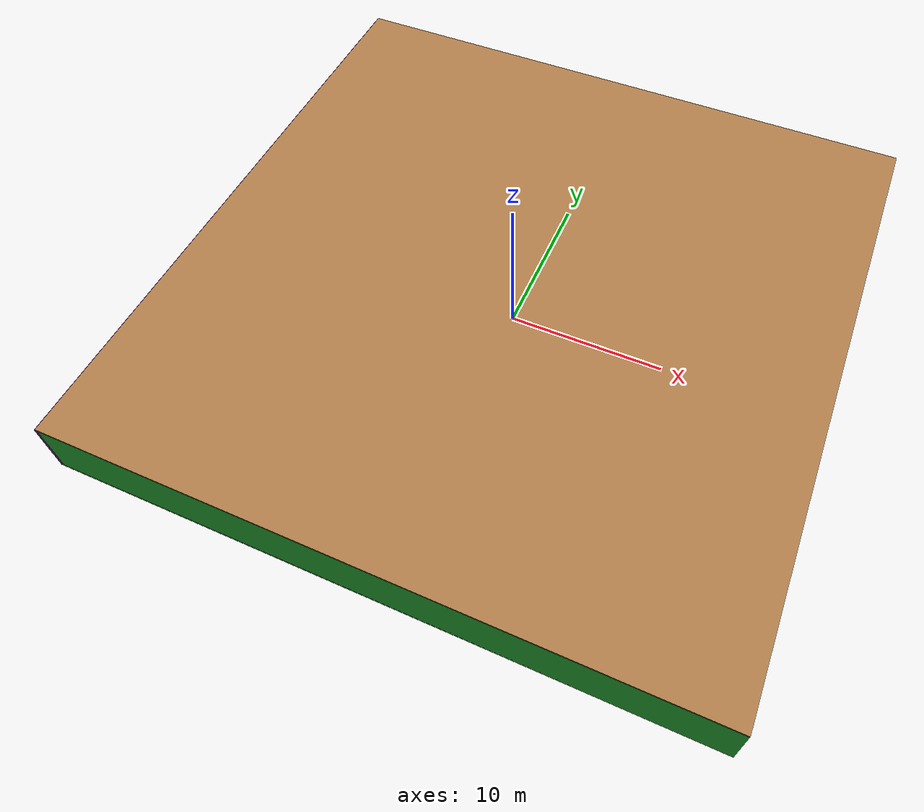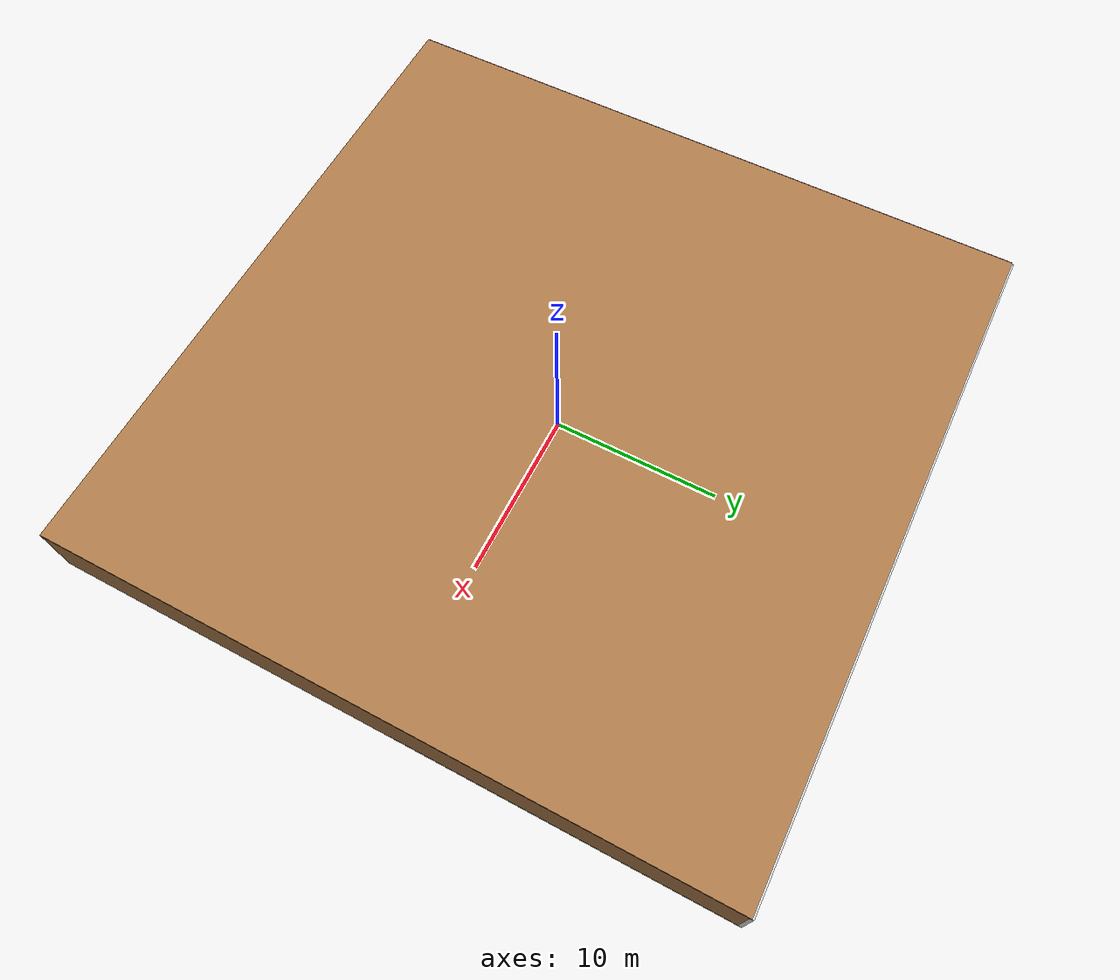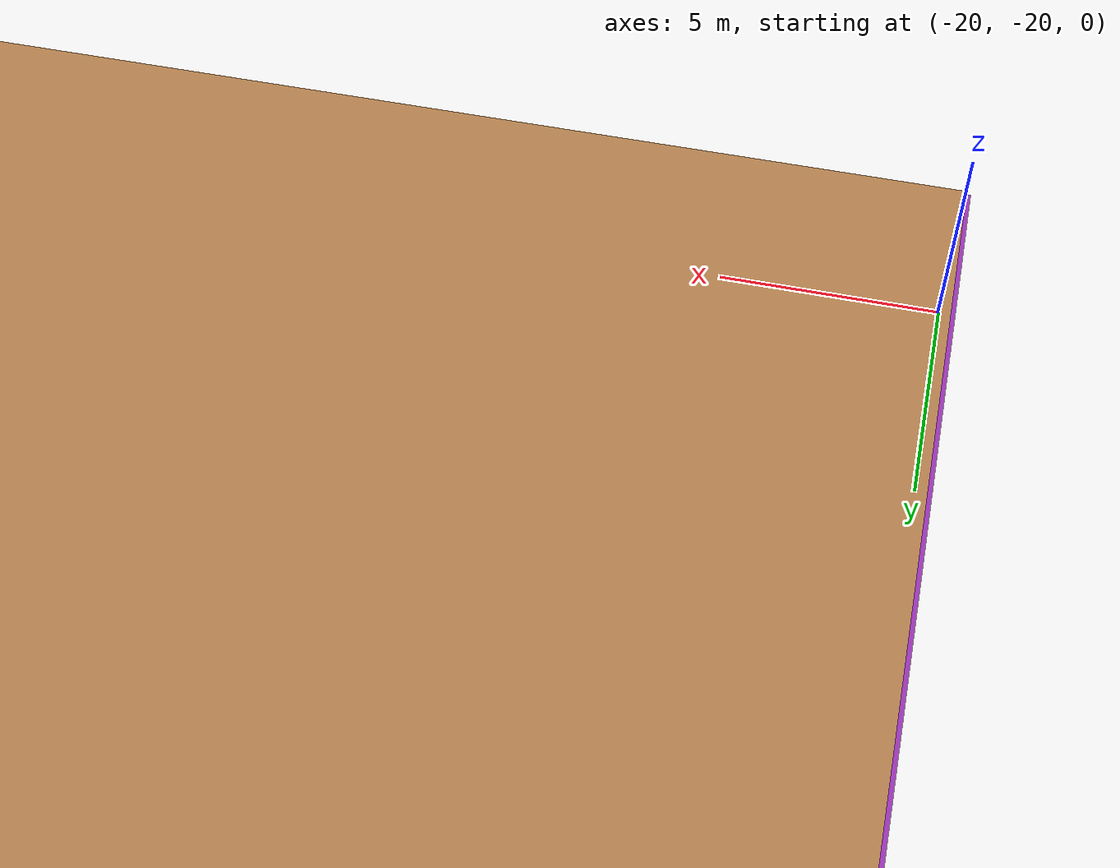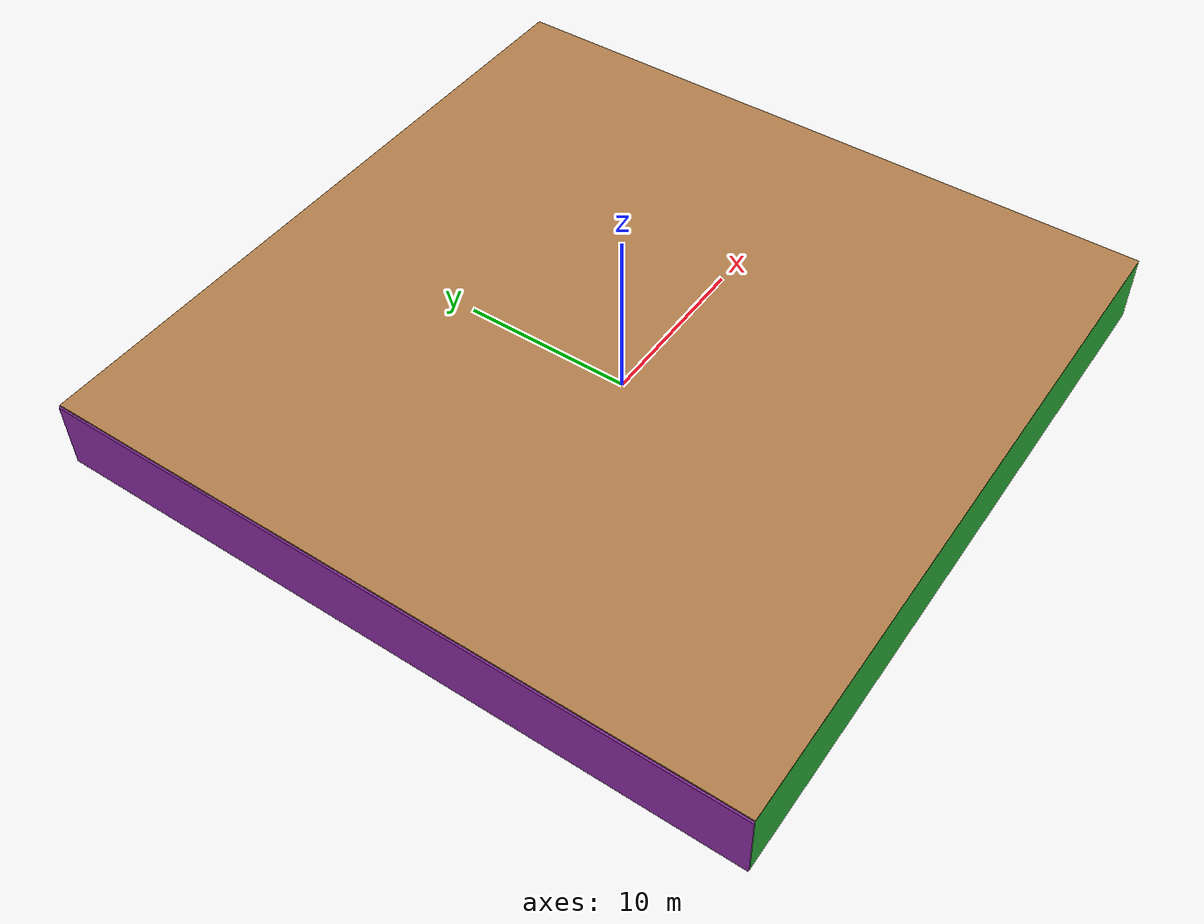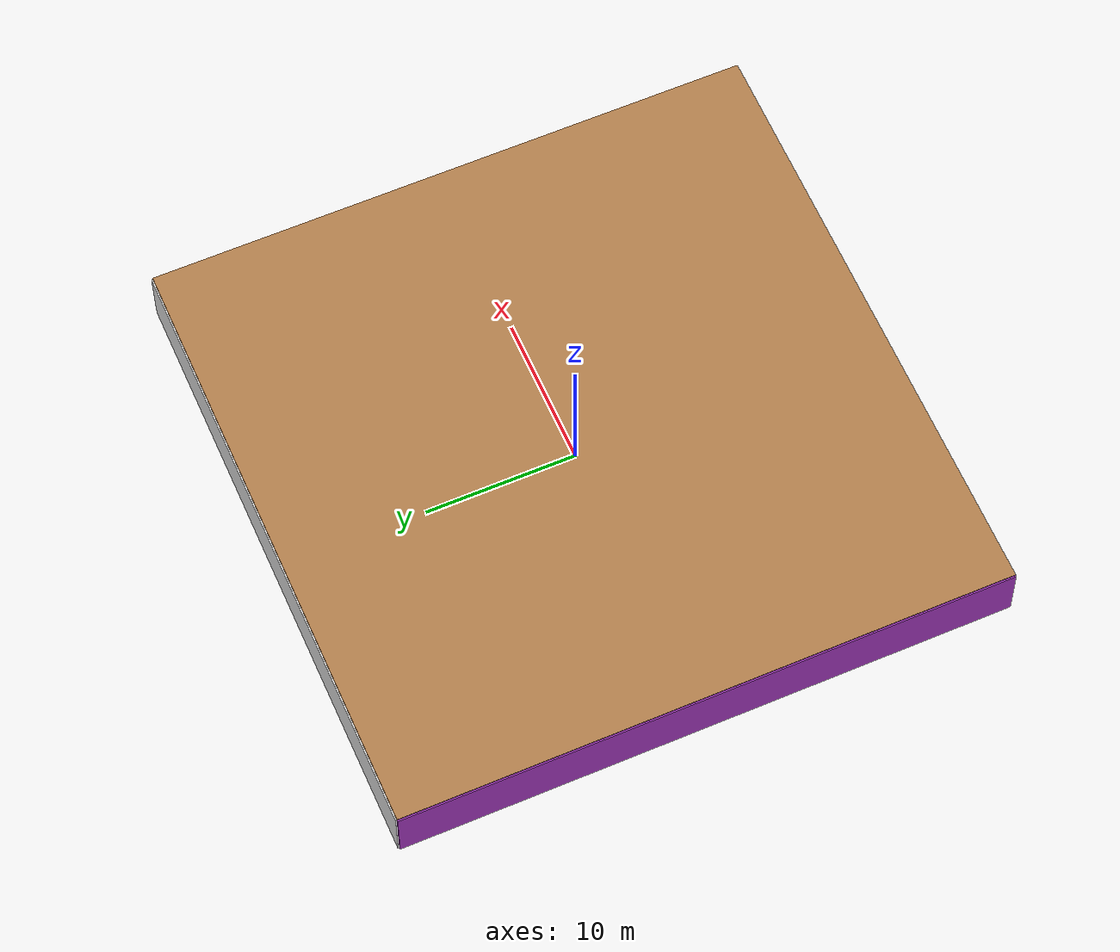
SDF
<sdf version="1.4">
 <world name="default">
  <physics type="ode">
   <max_step_size>0.001</max_step_size>
   <real_time_factor>1</real_time_factor>
   <real_time_update_rate>1000</real_time_update_rate>
   <gravity>0 0 -9.8</gravity>
  </physics>
  <scene><ambient>0.4 0.4 0.4 1</ambient><background>0.7 0.7 0.7 1</background><shadows>1</shadows></scene>
  <model name="Surrounding">
   <static>1</static>
   <link name="Ceiling">
    <collision name="Ceiling_Collision"><geometry><box><size>40 40 0.1</size></box></geometry></collision>
    <visual name="Ceiling_Visual">
     <geometry><box><size>40 40 0.1</size></box></geometry>
     <material>
      <script><uri>file://media/materials/scripts/gazebo.material</uri><name>Gazebo/WoodPallet</name></script>
     </material>
    </visual>
    <pose>0 0 4.05 0 0 0</pose>
   </link>
   <link name="Wall_South">
    <collision name="Wall_South_Collision">
     <geometry><box><size>40 0 4</size></box></geometry>
     <pose>0 0 2 0 -0 0</pose>
    </collision>
    <visual name="Wall_South_Visual">
     <pose>0 0 2 0 -0 0</pose>
     <geometry><box><size>40 0 4</size></box></geometry>
     <material>
      <script><uri>file://media/materials/scripts/gazebo.material</uri><name>Gazebo/GreenGlow</name></script>
     </material>
    </visual>
    <velocity_decay><linear>0</linear><angular>0</angular></velocity_decay>
    <pose>0 -20 0 0 -0 0</pose>
   </link>
   <link name="Wall_East">
    <collision name="Wall_21_Collision">
     <geometry><box><size>40 0 4</size></box></geometry>
     <pose>0 0 2 0 -0 0</pose>
    </collision>
    <visual name="Wall_21_Visual">
     <pose>0 0 2 0 -0 0</pose>
     <geometry><box><size>40 0 4</size></box></geometry>
     <material>
      <script><uri>file://media/materials/scripts/gazebo.material</uri><name>Gazebo/WoodFloor</name></script>
     </material>
    </visual>
    <velocity_decay><linear>0</linear><angular>0</angular></velocity_decay>
    <pose>20 0 0 0 -0 1.5708</pose>
   </link>
   <link name="Wall_North">
    <collision name="Wall_22_Collision">
     <geometry><box><size>40 0.2 4</size></box></geometry>
     <pose>0 0 2 0 -0 0</pose>
    </collision>
    <visual name="Wall_22_Visual">
     <pose>0 0 2 0 -0 0</pose>
     <geometry><box><size>40 0.2 4</size></box></geometry>
     <material>
      <script><uri>file://media/materials/scripts/gazebo.material</uri><name>Gazebo/White</name></script>
     </material>
    </visual>
    <velocity_decay><linear>0</linear><angular>0</angular></velocity_decay>
    <pose>0 20 0 0 -0 0</pose>
   </link>
   <link name="Wall_West">
    <collision name="Wall_23_Collision">
     <geometry><box><size>40 0.2 4</size></box></geometry>
     <pose>0 0 2 0 -0 0</pose>
    </collision>
    <visual name="Wall_23_Visual">
     <pose>0 0 2 0 -0 0</pose>
     <geometry><box><size>40 0.2 4</size></box></geometry>
     <material>
      <script><uri>file://media/materials/scripts/gazebo.material</uri><name>Gazebo/Purple</name></script>
     </material>
    </visual>
    <velocity_decay><linear>0</linear><angular>0</angular></velocity_decay>
    <pose>-20 0 0 0 0 -1.5708</pose>
   </link>
   <link name="Ground_link">
    <collision name="collision">
     <pose>0 0 .05 0 -0 0</pose>
     <geometry><box><size>40 40 0.1</size></box></geometry>
    </collision>
    <visual name="visual">
     <pose>0 0 .05 0 -0 0</pose>
     <geometry><box><size>40 40 0.1</size></box></geometry>
     <material>
      <script><uri>file://media/materials/scripts/gazebo.material</uri><name>Gazebo/GreenTransparent</name></script>
     </material>
    </visual>
   </link>
   <static>1</static>
  </model>
  <spherical_coordinates>
   <surface_model>EARTH_WGS84</surface_model>
   <latitude_deg>0</latitude_deg>
   <longitude_deg>0</longitude_deg>
   <elevation>0</elevation>
   <heading_deg>0</heading_deg>
  </spherical_coordinates>
  <light name="lightball_0" type="diffuse">
   <diffuse>0.8 0.8 0.8 1</diffuse>
   <specular>0.2 0.2 0.2 1</specular>
   <attenuation>
    <range>100</range>
    <constant>0.7</constant>
    <linear>0.01</linear>
    <quadratic>0.001</quadratic>
   </attenuation>
   <direction>-0.5 0.1 -0.9</direction>
   <pose>-2.00146260549 4.66076200547 1.0526886272 0 0 0</pose>
  </light>
  <light name="lightball_1" type="diffuse">
   <diffuse>0.8 0.8 0.8 1</diffuse>
   <specular>0.2 0.2 0.2 1</specular>
   <attenuation>
    <range>100</range>
    <constant>0.7</constant>
    <linear>0.01</linear>
    <quadratic>0.001</quadratic>
   </attenuation>
   <direction>-0.5 0.1 -0.9</direction>
   <pose>-8.69735270726 -6.93028395331 2.44069284213 0 0 0</pose>
  </light>
  <light name="lightball_2" type="diffuse">
   <diffuse>0.8 0.8 0.8 1</diffuse>
   <specular>0.2 0.2 0.2 1</specular>
   <attenuation>
    <range>100</range>
    <constant>0.7</constant>
    <linear>0.01</linear>
    <quadratic>0.001</quadratic>
   </attenuation>
   <direction>-0.5 0.1 -0.9</direction>
   <pose>-14.1749708973 -16.1614507067 2.2178846603 0 0 0</pose>
  </light>
  <light name="lightball_3" type="diffuse">
   <diffuse>0.8 0.8 0.8 1</diffuse>
   <specular>0.2 0.2 0.2 1</specular>
   <attenuation>
    <range>100</range>
    <constant>0.7</constant>
    <linear>0.01</linear>
    <quadratic>0.001</quadratic>
   </attenuation>
   <direction>-0.5 0.1 -0.9</direction>
   <pose>5.13988389934 13.2870489447 3.51111796485 0 0 0</pose>
  </light>
  <light name="lightball_4" type="diffuse">
   <diffuse>0.8 0.8 0.8 1</diffuse>
   <specular>0.2 0.2 0.2 1</specular>
   <attenuation>
    <range>100</range>
    <constant>0.7</constant>
    <linear>0.01</linear>
    <quadratic>0.001</quadratic>
   </attenuation>
   <direction>-0.5 0.1 -0.9</direction>
   <pose>14.7452459802 5.55650788871 0.728517791887 0 0 0</pose>
  </light>
  <light name="lightball_5" type="diffuse">
   <diffuse>0.8 0.8 0.8 1</diffuse>
   <specular>0.2 0.2 0.2 1</specular>
   <attenuation>
    <range>100</range>
    <constant>0.7</constant>
    <linear>0.01</linear>
    <quadratic>0.001</quadratic>
   </attenuation>
   <direction>-0.5 0.1 -0.9</direction>
   <pose>-8.28311456274 11.9491088297 2.95563273184 0 0 0</pose>
  </light>
  <light name="lightball_6" type="diffuse">
   <diffuse>0.8 0.8 0.8 1</diffuse>
   <specular>0.2 0.2 0.2 1</specular>
   <attenuation>
    <range>100</range>
    <constant>0.7</constant>
    <linear>0.01</linear>
    <quadratic>0.001</quadratic>
   </attenuation>
   <direction>-0.5 0.1 -0.9</direction>
   <pose>10.6141900934 -12.6051019797 1.92290275085 0 0 0</pose>
  </light>
  <light name="lightball_7" type="diffuse">
   <diffuse>0.8 0.8 0.8 1</diffuse>
   <specular>0.2 0.2 0.2 1</specular>
   <attenuation>
    <range>100</range>
    <constant>0.7</constant>
    <linear>0.01</linear>
    <quadratic>0.001</quadratic>
   </attenuation>
   <direction>-0.5 0.1 -0.9</direction>
   <pose>4.1567062161 5.4185333537 2.79538172582 0 0 0</pose>
  </light>
  <light name="lightball_8" type="diffuse">
   <diffuse>0.8 0.8 0.8 1</diffuse>
   <specular>0.2 0.2 0.2 1</specular>
   <attenuation>
    <range>100</range>
    <constant>0.7</constant>
    <linear>0.01</linear>
    <quadratic>0.001</quadratic>
   </attenuation>
   <direction>-0.5 0.1 -0.9</direction>
   <pose>16.5421071379 -2.93160667469 2.00505390678 0 0 0</pose>
  </light>
  <include><uri>model://cabinet</uri><pose>-17.8360769391 -15.4475448264 0 0 0 0.590462774932</pose></include>
  <include><uri>model://table</uri><pose>-16.4453047446 3.16904110968 0 0 0 1.62468512752</pose></include>
  <include><uri>model://cabinet</uri><pose>-17.9685525064 18.1751492512 0 0 0 0.706060284533</pose></include>
  <include><uri>model://table</uri><pose>-13.8727611629 -7.93256377013 0 0 0 1.22365619514</pose></include>
  <include><uri>model://table</uri><pose>-15.3046643678 -1.73323303489 0 0 0 1.80029601887</pose></include>
  <include>
   <uri>model://textured_shapes</uri>
   <pose>-13.5023738116 0.494923767948 0 0 0 1.83459362224</pose>
  </include>
  <include><uri>model://cabinet</uri><pose>-13.328057679 19.3843203342 0 0 0 1.50158401323</pose></include>
  <include>
   <uri>model://construction_cone</uri>
   <pose>-11.3350948474 -17.9600300483 0 0 0 0.4918776353</pose>
  </include>
  <include>
   <uri>model://robocup_3Dsim_goal</uri>
   <pose>-10.6050758172 -14.3053528988 0 0 0 2.46054857611</pose>
  </include>
  <include>
   <uri>model://robocup_3Dsim_goal</uri>
   <pose>-9.3993856778 -16.5159177833 0 0 0 1.76930617447</pose>
  </include>
  <include>
   <uri>model://textured_shapes</uri>
   <pose>-8.55876777942 -11.8444229329 0 0 0 0.290866694426</pose>
  </include>
  <include><uri>model://cabinet</uri><pose>-9.58284519019 6.48671383414 0 0 0 1.3699742815</pose></include>
  <include>
   <uri>model://robocup_3Dsim_goal</uri>
   <pose>-4.84408128591 0.150489163961 0 0 0 2.38832682296</pose>
  </include>
  <include>
   <uri>model://robocup_3Dsim_goal</uri>
   <pose>-0.408244717356 14.4698386934 0 0 0 2.32035724259</pose>
  </include>
  <include>
   <uri>model://textured_shapes</uri>
   <pose>2.61903757515 -15.2515019145 0 0 0 2.994078399</pose>
  </include>
  <include>
   <uri>model://robocup_3Dsim_goal</uri>
   <pose>2.69779389955 3.00656229424 0 0 0 0.0346034449805</pose>
  </include>
  <include>
   <uri>model://robocup_3Dsim_goal</uri>
   <pose>3.01028132463 18.5842453941 0 0 0 3.09472798191</pose>
  </include>
  <include>
   <uri>model://textured_shapes</uri>
   <pose>5.60523489039 3.98732866393 0 0 0 0.11902270269</pose>
  </include>
  <include>
   <uri>model://construction_cone</uri>
   <pose>6.69835151048 5.35759457871 0 0 0 0.998204376935</pose>
  </include>
  <include>
   <uri>model://construction_cone</uri>
   <pose>8.64337170428 -18.4226502477 0 0 0 2.23629077492</pose>
  </include>
  <include>
   <uri>model://textured_shapes</uri>
   <pose>9.70762971642 -4.60406352739 0 0 0 2.4475218601</pose>
  </include>
  <include>
   <uri>model://textured_shapes</uri>
   <pose>9.11785217112 6.90238981294 0 0 0 0.649131415378</pose>
  </include>
  <include>
   <uri>model://robocup_3Dsim_goal</uri>
   <pose>11.4866341343 4.53511632128 0 0 0 1.17048668841</pose>
  </include>
  <include><uri>model://table</uri><pose>12.4273403815 14.9243139414 0 0 0 2.62088316403</pose></include>
  <include>
   <uri>model://construction_cone</uri>
   <pose>16.0551616228 3.02954341256 0 0 0 0.130186371316</pose>
  </include>
  <include>
   <uri>model://robocup_3Dsim_goal</uri>
   <pose>16.5408496454 10.1719685624 0 0 0 0.919804911362</pose>
  </include>
  <include><uri>model://cabinet</uri><pose>16.026859171 19.5083304343 0 0 0 0.217448171772</pose></include>
 </world>
</sdf>

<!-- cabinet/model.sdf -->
<sdf version="1.5">
  <model name="cabinet">
    <static>true</static>
    <link name="cabinet_bottom_plate">
      <inertial>
        <pose>0 0 -1 0 0 0</pose>
        <inertia>
          <ixx>2.050000</ixx>
          <ixy>0</ixy>
          <ixz>0</ixz>
          <iyy>2.050000</iyy>
          <iyz>0</iyz>
          <izz>2.050000</izz>
        </inertia>
        <mass>25.000000</mass>
      </inertial>
      <collision name="cabinet_bottom_plate_geom">
        <pose>0 0 0.010000 0 0 0</pose>
        <geometry>
          <box>
            <size>0.450000 0.450000 0.020000</size>
          </box>
        </geometry>
      </collision>
      <visual name="cabinet_bottom_plate_geom_visual">
        <pose>0 0 0.010000 0 0 0</pose>
        <geometry>
          <box>
            <size>0.450000 0.450000 0.020000</size>
          </box>
        </geometry>
        <material>
          <script>
            <uri>model://media/materials/scripts/gazebo.material</uri>
            <name>Gazebo/Wood</name>
          </script>
        </material>
      </visual>
      <collision name="cabinet_bottom_plate_geom_cabinet_back_plate">
        <pose>0.235000 0 0.510000 0 0 0</pose>
        <geometry>
          <box>
            <size>0.020000 0.450000 1.020000</size>
          </box>
        </geometry>
      </collision>
      <visual name="cabinet_bottom_plate_geom_cabinet_back_plate_visual">
        <pose>0.235000 0 0.510000 0 0 0</pose>
        <geometry>
          <box>
            <size>0.020000 0.450000 1.020000</size>
          </box>
        </geometry>
        <material>
          <script>
            <uri>model://media/materials/scripts/gazebo.material</uri>
            <name>Gazebo/Wood</name>
          </script>
        </material>
      </visual>
      <collision name="cabinet_bottom_plate_geom_cabinet_left_plate">
        <pose>0 0.235000 0.510000 0 0 0</pose>
        <geometry>
          <box>
            <size>0.450000 0.020000 1.020000</size>
          </box>
        </geometry>
      </collision>
      <visual name="cabinet_bottom_plate_geom_cabinet_left_plate_visual">
        <pose>0 0.235000 0.510000 0 0 0</pose>
        <geometry>
          <box>
            <size>0.450000 0.020000 1.020000</size>
          </box>
        </geometry>
        <material>
          <script>
            <uri>model://media/materials/scripts/gazebo.material</uri>
            <name>Gazebo/Wood</name>
          </script>
        </material>
      </visual>
      <collision name="cabinet_bottom_plate_geom_cabinet_middle_plate">
        <pose>0 0 0.510000 0 0 0</pose>
        <geometry>
          <box>
            <size>0.450000 0.450000 0.020000</size>
          </box>
        </geometry>
      </collision>
      <visual name="cabinet_bottom_plate_geom_cabinet_middle_plate_visual">
        <pose>0 0 0.510000 0 0 0</pose>
        <geometry>
          <box>
            <size>0.450000 0.450000 0.020000</size>
          </box>
        </geometry>
        <material>
          <script>
            <uri>model://media/materials/scripts/gazebo.material</uri>
            <name>Gazebo/Wood</name>
          </script>
        </material>
      </visual>
      <collision name="cabinet_bottom_plate_geom_cabinet_right_plate">
        <pose>0 -0.235000 0.510000 0 0 0</pose>
        <geometry>
          <box>
            <size>0.450000 0.020000 1.020000</size>
          </box>
        </geometry>
      </collision>
      <visual name="cabinet_bottom_plate_geom_cabinet_right_plate_visual">
        <pose>0 -0.235000 0.510000 0 0 0</pose>
        <geometry>
          <box>
            <size>0.450000 0.020000 1.020000</size>
          </box>
        </geometry>
        <material>
          <script>
            <uri>model://media/materials/scripts/gazebo.material</uri>
            <name>Gazebo/Wood</name>
          </script>
        </material>
      </visual>
      <collision name="cabinet_bottom_plate_geom_cabinet_top_plate">
        <pose>0 0 1.010000 0 0 0</pose>
        <geometry>
          <box>
            <size>0.450000 0.450000 0.020000</size>
          </box>
        </geometry>
      </collision>
      <visual name="cabinet_bottom_plate_geom_cabinet_top_plate_visual">
        <pose>0 0 1.010000 0 0 0</pose>
        <geometry>
          <box>
            <size>0.450000 0.450000 0.020000</size>
          </box>
        </geometry>
        <material>
          <script>
            <uri>model://media/materials/scripts/gazebo.material</uri>
            <name>Gazebo/Wood</name>
          </script>
        </material>
      </visual>
    </link>
  </model>
</sdf>

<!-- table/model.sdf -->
<sdf version="1.5">
  <model name="table">
    <static>true</static>
    <link name="link">
      <collision name="surface">
        <pose>0 0 1.0 0 0 0</pose>
        <geometry>
          <box>
            <size>1.5 0.8 0.03</size>
          </box>
        </geometry>
        <surface>
          <friction>
            <ode>
              <mu>0.6</mu>
              <mu2>0.6</mu2>
            </ode>
          </friction>
        </surface>
      </collision>
      <visual name="visual1">
        <pose>0 0 1.0 0 0 0</pose>
        <geometry>
          <box>
            <size>1.5 0.8 0.03</size>
          </box>
        </geometry>
        <material>
          <script>
            <uri>model://media/materials/scripts/gazebo.material</uri>
            <name>Gazebo/Wood</name>
          </script>
        </material>
      </visual>
      <collision name="front_left_leg">
        <pose>0.68 0.38 0.5 0 0 0</pose>
        <geometry>
          <cylinder>
            <radius>0.02</radius>
            <length>1.0</length>
          </cylinder>
        </geometry>
      </collision>
      <visual name="front_left_leg">
        <pose>0.68 0.38 0.5 0 0 0</pose>
        <geometry>
          <cylinder>
            <radius>0.02</radius>
            <length>1.0</length>
          </cylinder>
        </geometry>
        <material>
          <script>
            <uri>model://media/materials/scripts/gazebo.material</uri>
            <name>Gazebo/Grey</name>
          </script>
        </material>
      </visual>
      <collision name="front_right_leg">
        <pose>0.68 -0.38 0.5 0 0 0</pose>
        <geometry>
          <cylinder>
            <radius>0.02</radius>
            <length>1.0</length>
          </cylinder>
        </geometry>
      </collision>
      <visual name="front_right_leg">
        <pose>0.68 -0.38 0.5 0 0 0</pose>
        <geometry>
          <cylinder>
            <radius>0.02</radius>
            <length>1.0</length>
          </cylinder>
        </geometry>
        <material>
          <script>
            <uri>model://media/materials/scripts/gazebo.material</uri>
            <name>Gazebo/Grey</name>
          </script>
        </material>
      </visual>
      <collision name="back_right_leg">
        <pose>-0.68 -0.38 0.5 0 0 0</pose>
        <geometry>
          <cylinder>
            <radius>0.02</radius>
            <length>1.0</length>
          </cylinder>
        </geometry>
      </collision>
      <visual name="back_right_leg">
        <pose>-0.68 -0.38 0.5 0 0 0</pose>
        <geometry>
          <cylinder>
            <radius>0.02</radius>
            <length>1.0</length>
          </cylinder>
        </geometry>
        <material>
          <script>
            <uri>model://media/materials/scripts/gazebo.material</uri>
            <name>Gazebo/Grey</name>
          </script>
        </material>
      </visual>
      <collision name="back_left_leg">
        <pose>-0.68 0.38 0.5 0 0 0</pose>
        <geometry>
          <cylinder>
            <radius>0.02</radius>
            <length>1.0</length>
          </cylinder>
        </geometry>
      </collision>
      <visual name="back_left_leg">
        <pose>-0.68 0.38 0.5 0 0 0</pose>
        <geometry>
          <cylinder>
            <radius>0.02</radius>
            <length>1.0</length>
          </cylinder>
        </geometry>
        <material>
          <script>
            <uri>model://media/materials/scripts/gazebo.material</uri>
            <name>Gazebo/Grey</name>
          </script>
        </material>
      </visual>
    </link>
  </model>
</sdf>

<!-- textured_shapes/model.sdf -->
<sdf version="1.6">
  <model name="textured_shapes">
    <pose>0 0 0.5 0 0 0</pose>
    <link name="box">
      <pose>0 -1.5 0 0 0 0</pose>
      <collision name="collision">
        <geometry>
          <box>
            <size>1 1 1</size>
          </box>
        </geometry>
      </collision>
      <visual name="visual">
        <geometry>
          <box>
            <size>1 1 1</size>
          </box>
        </geometry>
        <material>
          <script>
            <uri>model://../model_source/models/textured_shapes/materials/scripts</uri>
            <uri>model://../model_source/models/textured_shapes/materials/textures</uri>
            <name>TexturedShape/Squares</name>
          </script>
        </material>
      </visual>
    </link>
    <link name="sphere">
      <collision name="collision">
        <geometry>
          <sphere>
            <radius>0.5</radius>
          </sphere>
        </geometry>
      </collision>
      <visual name="visual">
        <geometry>
          <sphere>
            <radius>0.5</radius>
          </sphere>
        </geometry>
        <material>
          <script>
            <uri>model://../model_source/models/textured_shapes/materials/scripts</uri>
            <uri>model://../model_source/models/textured_shapes/materials/textures</uri>
            <name>TexturedShape/Squares</name>
          </script>
        </material>
      </visual>
    </link>
    <link name="cylinder">
      <pose>0 1.5 0 0 0 0</pose>
      <collision name="collision">
        <geometry>
          <cylinder>
            <radius>0.5</radius>
            <length>1</length>
          </cylinder>
        </geometry>
      </collision>
      <visual name="visual">
        <geometry>
          <cylinder>
            <radius>0.5</radius>
            <length>1</length>
          </cylinder>
        </geometry>
        <material>
          <script>
            <uri>model://../model_source/models/textured_shapes/materials/scripts</uri>
            <uri>model://../model_source/models/textured_shapes/materials/textures</uri>
            <name>TexturedShape/Squares</name>
          </script>
        </material>
      </visual>
    </link>
  </model>
</sdf>

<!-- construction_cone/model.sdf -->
<sdf version="1.5">
  <model name="Construction Cone">
    <link name="link">
      <collision name="collision">
        <geometry>
          <mesh>
            <scale>10 10 10</scale>
            <uri>file://isr-testbed/construction_cone/meshes/construction_cone.dae</uri>
          </mesh>
        </geometry>
      </collision>
      <visual name="visual">
        <geometry>
          <mesh>
            <scale>10 10 10</scale>
            <uri>file://isr-testbed/construction_cone/meshes/construction_cone.dae</uri>
          </mesh>
        </geometry>
      </visual>
    </link>
  </model>
</sdf>

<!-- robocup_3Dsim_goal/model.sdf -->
<sdf version="1.5">
  <model name="robocup_3d_goal">
    <static>true</static>
    <link name="left_post">
      <pose>0 1.05 0.45 0 0 0</pose>
      <collision name="collision">
        <geometry>
          <cylinder>
            <radius>0.05</radius>
            <length>0.9</length>
          </cylinder>
        </geometry>
      </collision>
      <visual name="visual">
        <geometry>
          <cylinder>
            <radius>0.05</radius>
            <length>0.9</length>
          </cylinder>
        </geometry>
        <material>
          <script>
            <uri>file://media/materials/scripts/gazebo.material</uri>
            <name>Gazebo/ZincYellow</name>
          </script>
        </material>
      </visual>
    </link>
    <link name="left_support_horiz_lower">
      <pose>0.30 1.05 0.01 0 0 0</pose>
      <collision name="collision">
        <geometry>
          <box>
            <size>0.50 0.02 0.02</size>
          </box>
        </geometry>
      </collision>
      <visual name="visual">
        <geometry>
          <box>
            <size>0.50 0.02 0.02</size>
          </box>
        </geometry>
        <material>
          <script>
            <uri>file://media/materials/scripts/gazebo.material</uri>
            <name>Gazebo/White</name>
          </script>
        </material>
      </visual>
    </link>
    <link name="left_support_horiz_upper">
      <pose>0.30 1.05 0.79 0 0 0</pose>
      <collision name="collision">
        <geometry>
          <box>
            <size>0.50 0.02 0.02</size>
          </box>
        </geometry>
      </collision>
      <visual name="visual">
        <geometry>
          <box>
            <size>0.50 0.02 0.02</size>
          </box>
        </geometry>
        <material>
          <script>
            <uri>file://media/materials/scripts/gazebo.material</uri>
            <name>Gazebo/White</name>
          </script>
        </material>
      </visual>
    </link>
    <link name="left_support_vertical">
      <pose>0.56 1.05 0.4 0 1.5708 0</pose>
      <collision name="collision">
        <geometry>
          <box>
            <size>0.80 0.02 0.02</size>
          </box>
        </geometry>
      </collision>
      <visual name="visual">
        <geometry>
          <box>
            <size>0.80 0.02 0.02</size>
          </box>
        </geometry>
        <material>
          <script>
            <uri>file://media/materials/scripts/gazebo.material</uri>
            <name>Gazebo/White</name>
          </script>
        </material>
      </visual>
    </link>
    <link name="right_support_horiz_lower">
      <pose>0.30 -1.05 0.01 0 0 0</pose>
      <collision name="collision">
        <geometry>
          <box>
            <size>0.50 0.02 0.02</size>
          </box>
        </geometry>
      </collision>
      <visual name="visual">
        <geometry>
          <box>
            <size>0.50 0.02 0.02</size>
          </box>
        </geometry>
        <material>
          <script>
            <uri>file://media/materials/scripts/gazebo.material</uri>
            <name>Gazebo/White</name>
          </script>
        </material>
      </visual>
    </link>
    <link name="right_support_horiz_upper">
      <pose>0.30 -1.05 0.79 0 0 0</pose>
      <collision name="collision">
        <geometry>
          <box>
            <size>0.50 0.02 0.02</size>
          </box>
        </geometry>
      </collision>
      <visual name="visual">
        <geometry>
          <box>
            <size>0.50 0.02 0.02</size>
          </box>
        </geometry>
        <material>
          <script>
            <uri>file://media/materials/scripts/gazebo.material</uri>
            <name>Gazebo/White</name>
          </script>
        </material>
      </visual>
    </link>
    <link name="right_support_vertical">
      <pose>0.56 -1.05 0.4 0 1.5708 0</pose>
      <collision name="collision">
        <geometry>
          <box>
            <size>0.80 0.02 0.02</size>
          </box>
        </geometry>
      </collision>
      <visual name="visual">
        <geometry>
          <box>
            <size>0.80 0.02 0.02</size>
          </box>
        </geometry>
        <material>
          <script>
            <uri>file://media/materials/scripts/gazebo.material</uri>
            <name>Gazebo/White</name>
          </script>
        </material>
      </visual>
    </link>
    <link name="center_support_horiz_lower">
      <pose>0.56 0 0.01 0 1.5708 0</pose>
      <collision name="collision">
        <geometry>
          <box>
            <size>0.02 2.08 0.02</size>
          </box>
        </geometry>
      </collision>
      <visual name="visual">
        <geometry>
          <box>
            <size>0.02 2.08 0.02</size>
          </box>
        </geometry>
        <material>
          <script>
            <uri>file://media/materials/scripts/gazebo.material</uri>
            <name>Gazebo/White</name>
          </script>
        </material>
      </visual>
    </link>
    <link name="center_support_horiz_upper">
      <pose>0.56 0 0.79 0 1.5708 0</pose>
      <collision name="collision">
        <geometry>
          <box>
            <size>0.02 2.08 0.02</size>
          </box>
        </geometry>
      </collision>
      <visual name="visual">
        <geometry>
          <box>
            <size>0.02 2.08 0.02</size>
          </box>
        </geometry>
        <material>
          <script>
            <uri>file://media/materials/scripts/gazebo.material</uri>
            <name>Gazebo/White</name>
          </script>
        </material>
      </visual>
    </link>
    <link name="right_post">
      <pose>0 -1.05 0.45 0 0 0</pose>
      <collision name="collision">
        <geometry>
          <cylinder>
            <radius>0.05</radius>
            <length>0.9</length>
          </cylinder>
        </geometry>
      </collision>
      <visual name="visual">
        <geometry>
          <cylinder>
            <radius>0.05</radius>
            <length>0.9</length>
          </cylinder>
        </geometry>
        <material>
          <script>
            <uri>file://media/materials/scripts/gazebo.material</uri>
            <name>Gazebo/ZincYellow</name>
          </script>
        </material>
      </visual>
    </link>
    <link name="crossbar">
      <pose>0 0 0.85 1.57 1.57 0</pose>
      <collision name="collision">
        <geometry>
          <cylinder>
            <radius>0.05</radius>
            <length>2.0</length>
          </cylinder>
        </geometry>
      </collision>
      <visual name="visual">
        <geometry>
          <cylinder>
            <radius>0.05</radius>
            <length>2.0</length>
          </cylinder>
        </geometry>
        <material>
          <script>
            <uri>file://media/materials/scripts/gazebo.material</uri>
            <name>Gazebo/ZincYellow</name>
          </script>
        </material>
      </visual>
    </link>
    <link name="center_net">
      <pose>0.56 0 0.40 0 0 0</pose>
      <collision name="collision">
        <geometry>
          <box>
            <size>0.01 2.1 0.80</size>
          </box>
        </geometry>
      </collision>
      <visual name="visual">
        <geometry>
          <box>
            <size>0.01 2.1 0.80</size>
          </box>
        </geometry>
        <material>
          <script>
            <uri>model://../model_source/models/robocup09_spl_field/materials/scripts/</uri>
            <uri>model://../model_source/models/robocup09_spl_field/materials/textures/</uri>
            <name>RoboCup/Net</name>
          </script>
        </material>
      </visual>
    </link>
    <link name="left_net">
      <pose>0.30 1.05 0.40 0 0 0</pose>
      <collision name="collision">
        <geometry>
          <box>
            <size>0.50 0.01 0.76</size>
          </box>
        </geometry>
      </collision>
      <visual name="visual">
        <geometry>
          <box>
            <size>0.50 0.01 0.76</size>
          </box>
        </geometry>
        <material>
          <script>
            <uri>model://../model_source/models/robocup09_spl_field/materials/scripts/</uri>
            <uri>model://../model_source/models/robocup09_spl_field/materials/textures/</uri>
            <name>RoboCup/Net</name>
          </script>
        </material>
      </visual>
    </link>
    <link name="right_net">
      <pose>0.30 -1.05 0.40 0 0 0</pose>
      <collision name="collision">
        <geometry>
          <box>
            <size>0.50 0.01 0.76</size>
          </box>
        </geometry>
      </collision>
      <visual name="visual">
        <geometry>
          <box>
            <size>0.50 0.01 0.76</size>
          </box>
        </geometry>
        <material>
          <script>
            <uri>model://../model_source/models/robocup09_spl_field/materials/scripts/</uri>
            <uri>model://../model_source/models/robocup09_spl_field/materials/textures/</uri>
            <name>RoboCup/Net</name>
          </script>
        </material>
      </visual>
    </link>
  </model>
</sdf>
